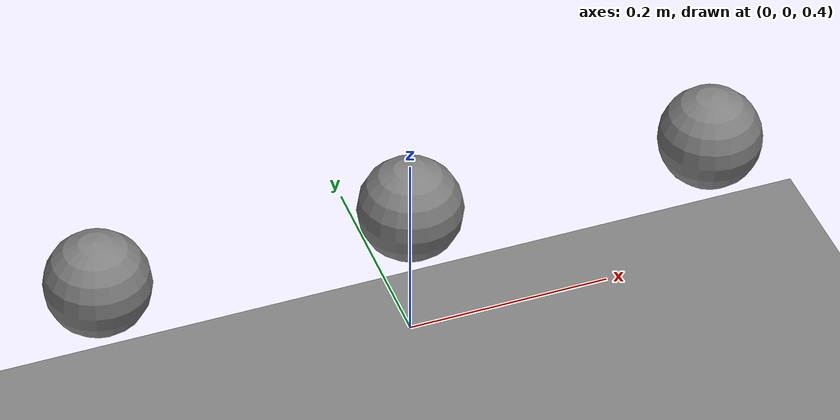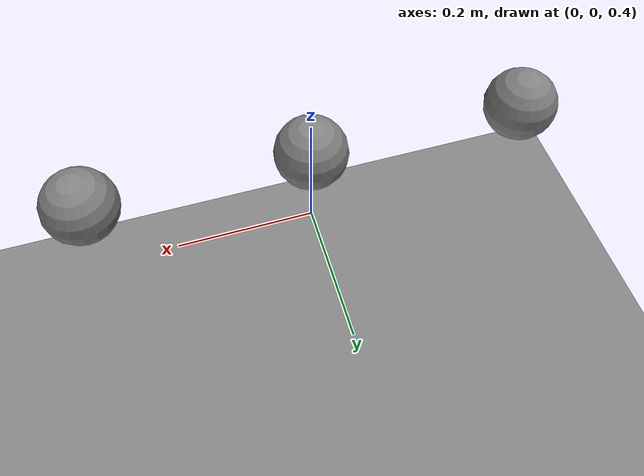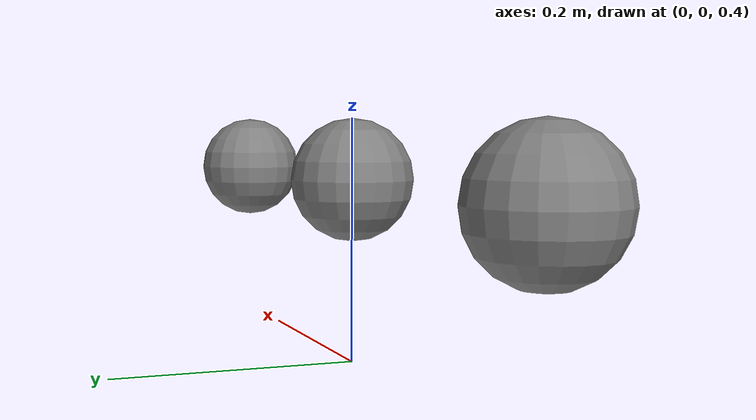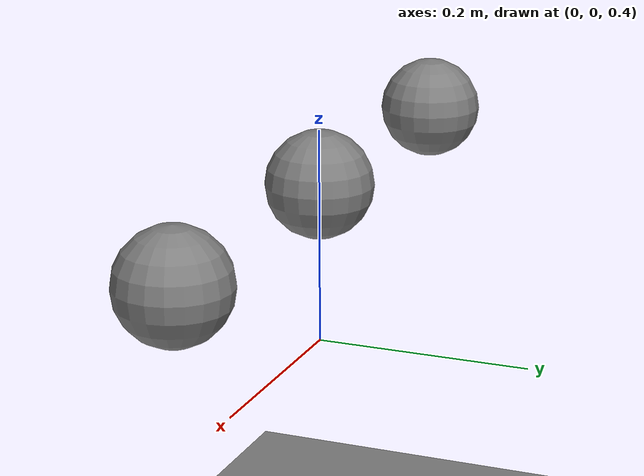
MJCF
<mujoco model="solref-bounce">
          <option gravity="0 0 -9.81" timestep="0.0005" solver="Newton"
                  iterations="50" tolerance="1e-10"/>

          <worldbody>
            <geom name="ground" type="plane" size="5 5 0.01"/>

            <body name="stiff" pos="-0.3 0 0.55">
              <freejoint/>
              <geom name="g_stiff" type="sphere" size="0.05" mass="0.5"/>
            </body>
            <body name="default" pos="0 0 0.55">
              <freejoint/>
              <geom name="g_default" type="sphere" size="0.05" mass="0.5"/>
            </body>
            <body name="soft" pos="0.3 0 0.55">
              <freejoint/>
              <geom name="g_soft" type="sphere" size="0.05" mass="0.5"/>
            </body>
          </worldbody>

          <contact>
            <pair geom1="ground" geom2="g_stiff"
                  solref="-5000 -10" condim="1"/>
            <pair geom1="ground" geom2="g_default"
                  solref="-5000 -30" condim="1"/>
            <pair geom1="ground" geom2="g_soft"
                  solref="-5000 -500" condim="1"/>
          </contact>
        </mujoco>
